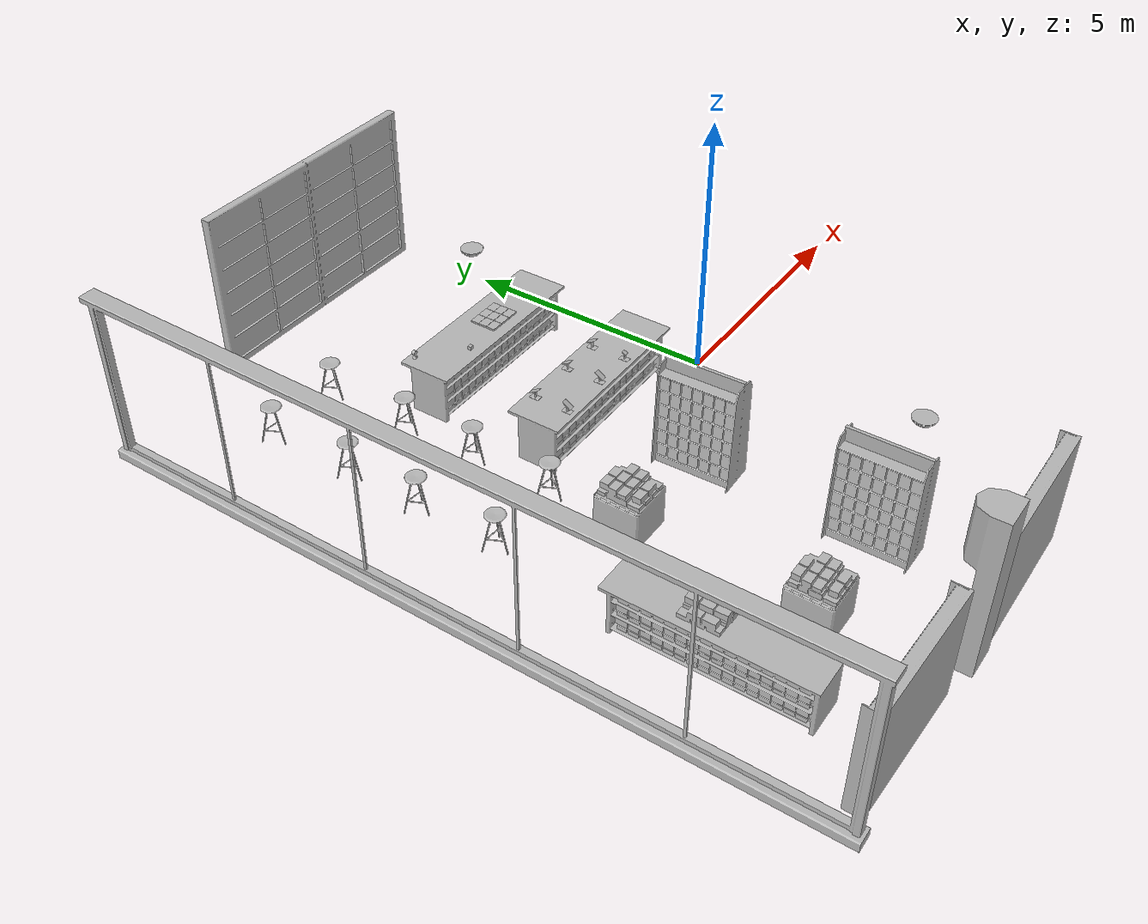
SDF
<sdf version="1.6">
 <world name="default">
  <model name="BookE_01_006">
   <link name="aws_robomaker_retail_BookE_01::link">
    <inertial>
     <mass>1</mass>
     <inertia><ixy>0</ixy><ixz>0</ixz><iyz>0</iyz><ixx>0.0666</ixx><iyy>0.0346</iyy><izz>0.0986</izz></inertia>
    </inertial>
    <collision name="collision">
     <geometry>
      <mesh>
       <uri>file://models/aws_robomaker_retail_BookE_01/meshes/aws_BookE_01_collision.DAE</uri>
       <scale>1 1 1</scale>
      </mesh>
     </geometry>
    </collision>
    <visual name="visual">
     <geometry>
      <mesh><uri>file://models/aws_robomaker_retail_BookE_01/meshes/aws_BookE_01_visual.DAE</uri></mesh>
     </geometry>
     <meta><layer>1</layer></meta>
    </visual>
   </link>
   <static>1</static>
   <pose>-1.88942 3.34639 1.05494 0 -0 1.56816</pose>
  </model>
  <model name="BookE_01_007">
   <link name="aws_robomaker_retail_BookE_01::link">
    <inertial>
     <mass>1</mass>
     <inertia><ixy>0</ixy><ixz>0</ixz><iyz>0</iyz><ixx>0.0666</ixx><iyy>0.0346</iyy><izz>0.0986</izz></inertia>
    </inertial>
    <collision name="collision">
     <geometry>
      <mesh>
       <uri>file://models/aws_robomaker_retail_BookE_01/meshes/aws_BookE_01_collision.DAE</uri>
       <scale>1 1 1</scale>
      </mesh>
     </geometry>
    </collision>
    <visual name="visual">
     <geometry>
      <mesh><uri>file://models/aws_robomaker_retail_BookE_01/meshes/aws_BookE_01_visual.DAE</uri></mesh>
     </geometry>
     <meta><layer>1</layer></meta>
    </visual>
   </link>
   <static>1</static>
   <pose>-2.12373 3.34639 1.05494 0 -0 1.56816</pose>
  </model>
  <model name="BookE_01_014">
   <link name="aws_robomaker_retail_BookE_01::link">
    <inertial>
     <mass>1</mass>
     <inertia><ixy>0</ixy><ixz>0</ixz><iyz>0</iyz><ixx>0.0666</ixx><iyy>0.0346</iyy><izz>0.0986</izz></inertia>
    </inertial>
    <collision name="collision">
     <geometry>
      <mesh>
       <uri>file://models/aws_robomaker_retail_BookE_01/meshes/aws_BookE_01_collision.DAE</uri>
       <scale>1 1 1</scale>
      </mesh>
     </geometry>
    </collision>
    <visual name="visual">
     <geometry>
      <mesh><uri>file://models/aws_robomaker_retail_BookE_01/meshes/aws_BookE_01_visual.DAE</uri></mesh>
     </geometry>
     <meta><layer>1</layer></meta>
    </visual>
   </link>
   <static>1</static>
   <pose>-1.88942 2.99369 1.05494 0 -0 1.56816</pose>
  </model>
  <model name="BookE_01_015">
   <link name="aws_robomaker_retail_BookE_01::link">
    <inertial>
     <mass>1</mass>
     <inertia><ixy>0</ixy><ixz>0</ixz><iyz>0</iyz><ixx>0.0666</ixx><iyy>0.0346</iyy><izz>0.0986</izz></inertia>
    </inertial>
    <collision name="collision">
     <geometry>
      <mesh>
       <uri>file://models/aws_robomaker_retail_BookE_01/meshes/aws_BookE_01_collision.DAE</uri>
       <scale>1 1 1</scale>
      </mesh>
     </geometry>
    </collision>
    <visual name="visual">
     <geometry>
      <mesh><uri>file://models/aws_robomaker_retail_BookE_01/meshes/aws_BookE_01_visual.DAE</uri></mesh>
     </geometry>
     <meta><layer>1</layer></meta>
    </visual>
   </link>
   <static>1</static>
   <pose>-2.12373 2.99369 1.05494 0 -0 1.56816</pose>
  </model>
  <model name="BookE_01_016">
   <link name="aws_robomaker_retail_BookE_01::link">
    <inertial>
     <mass>1</mass>
     <inertia><ixy>0</ixy><ixz>0</ixz><iyz>0</iyz><ixx>0.0666</ixx><iyy>0.0346</iyy><izz>0.0986</izz></inertia>
    </inertial>
    <collision name="collision">
     <geometry>
      <mesh>
       <uri>file://models/aws_robomaker_retail_BookE_01/meshes/aws_BookE_01_collision.DAE</uri>
       <scale>1 1 1</scale>
      </mesh>
     </geometry>
    </collision>
    <visual name="visual">
     <geometry>
      <mesh><uri>file://models/aws_robomaker_retail_BookE_01/meshes/aws_BookE_01_visual.DAE</uri></mesh>
     </geometry>
     <meta><layer>1</layer></meta>
    </visual>
   </link>
   <static>1</static>
   <pose>-2.35737 2.99369 1.05494 0 -0 1.56816</pose>
  </model>
  <model name="BookE_01_017">
   <link name="aws_robomaker_retail_BookE_01::link">
    <inertial>
     <mass>1</mass>
     <inertia><ixy>0</ixy><ixz>0</ixz><iyz>0</iyz><ixx>0.0666</ixx><iyy>0.0346</iyy><izz>0.0986</izz></inertia>
    </inertial>
    <collision name="collision">
     <geometry>
      <mesh>
       <uri>file://models/aws_robomaker_retail_BookE_01/meshes/aws_BookE_01_collision.DAE</uri>
       <scale>1 1 1</scale>
      </mesh>
     </geometry>
    </collision>
    <visual name="visual">
     <geometry>
      <mesh><uri>file://models/aws_robomaker_retail_BookE_01/meshes/aws_BookE_01_visual.DAE</uri></mesh>
     </geometry>
     <meta><layer>1</layer></meta>
    </visual>
   </link>
   <static>1</static>
   <pose>-1.88942 3.17292 1.05494 0 -0 1.56816</pose>
  </model>
  <model name="BookE_01_018">
   <link name="aws_robomaker_retail_BookE_01::link">
    <inertial>
     <mass>1</mass>
     <inertia><ixy>0</ixy><ixz>0</ixz><iyz>0</iyz><ixx>0.0666</ixx><iyy>0.0346</iyy><izz>0.0986</izz></inertia>
    </inertial>
    <collision name="collision">
     <geometry>
      <mesh>
       <uri>file://models/aws_robomaker_retail_BookE_01/meshes/aws_BookE_01_collision.DAE</uri>
       <scale>1 1 1</scale>
      </mesh>
     </geometry>
    </collision>
    <visual name="visual">
     <geometry>
      <mesh><uri>file://models/aws_robomaker_retail_BookE_01/meshes/aws_BookE_01_visual.DAE</uri></mesh>
     </geometry>
     <meta><layer>1</layer></meta>
    </visual>
   </link>
   <static>1</static>
   <pose>-2.12373 3.17292 1.05494 0 -0 1.56816</pose>
  </model>
  <model name="BookE_01_019">
   <link name="aws_robomaker_retail_BookE_01::link">
    <inertial>
     <mass>1</mass>
     <inertia><ixy>0</ixy><ixz>0</ixz><iyz>0</iyz><ixx>0.0666</ixx><iyy>0.0346</iyy><izz>0.0986</izz></inertia>
    </inertial>
    <collision name="collision">
     <geometry>
      <mesh>
       <uri>file://models/aws_robomaker_retail_BookE_01/meshes/aws_BookE_01_collision.DAE</uri>
       <scale>1 1 1</scale>
      </mesh>
     </geometry>
    </collision>
    <visual name="visual">
     <geometry>
      <mesh><uri>file://models/aws_robomaker_retail_BookE_01/meshes/aws_BookE_01_visual.DAE</uri></mesh>
     </geometry>
     <meta><layer>1</layer></meta>
    </visual>
   </link>
   <static>1</static>
   <pose>-2.35737 3.17292 1.05494 0 -0 1.56816</pose>
  </model>
  <model name="BookE_01_030">
   <link name="aws_robomaker_retail_BookE_01::link">
    <inertial>
     <mass>1</mass>
     <inertia><ixy>0</ixy><ixz>0</ixz><iyz>0</iyz><ixx>0.0666</ixx><iyy>0.0346</iyy><izz>0.0986</izz></inertia>
    </inertial>
    <collision name="collision">
     <geometry>
      <mesh>
       <uri>file://models/aws_robomaker_retail_BookE_01/meshes/aws_BookE_01_collision.DAE</uri>
       <scale>1 1 1</scale>
      </mesh>
     </geometry>
    </collision>
    <visual name="visual">
     <geometry>
      <mesh><uri>file://models/aws_robomaker_retail_BookE_01/meshes/aws_BookE_01_visual.DAE</uri></mesh>
     </geometry>
     <meta><layer>1</layer></meta>
    </visual>
   </link>
   <static>1</static>
   <pose>-2.35737 3.34639 1.05494 0 -0 1.56816</pose>
  </model>
  <model name="BookD_01_002">
   <link name="aws_robomaker_retail_BookD_01::link">
    <inertial><mass>0.5</mass></inertial>
    <collision name="collision">
     <geometry>
      <mesh>
       <uri>file://models/aws_robomaker_retail_BookD_01/meshes/aws_BookD_01_collision.DAE</uri>
       <scale>1 1 1</scale>
      </mesh>
     </geometry>
    </collision>
    <visual name="visual">
     <geometry>
      <mesh><uri>file://models/aws_robomaker_retail_BookD_01/meshes/aws_BookD_01_visual.DAE</uri></mesh>
     </geometry>
     <meta><layer>1</layer></meta>
    </visual>
   </link>
   <static>1</static>
   <pose>-4.50961 -1.31254 0.804482 0 0 -4e-06</pose>
  </model>
  <model name="BookF_01_003">
   <link name="aws_robomaker_retail_BookF_01::link">
    <inertial>
     <mass>10</mass>
     <inertia>
      <ixx>0.583817</ixx>
      <ixy>0</ixy>
      <ixz>0</ixz>
      <iyy>0.502925</iyy>
      <iyz>0</iyz>
      <izz>0.99304</izz>
     </inertia>
    </inertial>
    <collision name="collision">
     <geometry>
      <mesh>
       <uri>file://models/aws_robomaker_retail_BookF_01/meshes/aws_BookF_01_collision.DAE</uri>
       <scale>1 1 1</scale>
      </mesh>
     </geometry>
    </collision>
    <visual name="visual">
     <geometry>
      <mesh><uri>file://models/aws_robomaker_retail_BookF_01/meshes/aws_BookF_01_visual.DAE</uri></mesh>
     </geometry>
     <meta><layer>1</layer></meta>
    </visual>
   </link>
   <static>1</static>
   <pose>-4.60493 -4.77214 0.804483 4e-06 -0 0</pose>
  </model>
  <model name="BookD_01_003">
   <link name="aws_robomaker_retail_BookD_01::link">
    <inertial><mass>0.5</mass></inertial>
    <collision name="collision">
     <geometry>
      <mesh>
       <uri>file://models/aws_robomaker_retail_BookD_01/meshes/aws_BookD_01_collision.DAE</uri>
       <scale>1 1 1</scale>
      </mesh>
     </geometry>
    </collision>
    <visual name="visual">
     <geometry>
      <mesh><uri>file://models/aws_robomaker_retail_BookD_01/meshes/aws_BookD_01_visual.DAE</uri></mesh>
     </geometry>
     <meta><layer>1</layer></meta>
    </visual>
   </link>
   <static>1</static>
   <pose>-6.23561 -3.78518 1.03816 8e-06 -0 1.58038</pose>
  </model>
  <model name="BookshelfA_01_003">
   <link name="aws_robomaker_retail_BookshelfA_01::link">
    <inertial>
     <mass>50</mass>
     <inertia><ixx>27.7341</ixx><ixy>0</ixy><ixz>0</ixz><iyy>20.9361</iyy><iyz>0</iyz><izz>11.3596</izz></inertia>
    </inertial>
    <collision name="collision">
     <geometry>
      <mesh>
       <uri>file://models/aws_robomaker_retail_BookshelfA_01/meshes/aws_BookshelfA_01_collision.DAE</uri>
       <scale>1 1 1</scale>
      </mesh>
     </geometry>
    </collision>
    <visual name="visual">
     <geometry>
      <mesh><uri>file://models/aws_robomaker_retail_BookshelfA_01/meshes/aws_BookshelfA_01_visual.DAE</uri></mesh>
     </geometry>
     <meta><layer>1</layer></meta>
    </visual>
   </link>
   <static>1</static>
   <pose>-2.55449 -1.48746 0.006337 0.001313 -0.001987 0.031824</pose>
  </model>
  <model name="BookshelfA_01_004">
   <link name="aws_robomaker_retail_BookshelfA_01::link">
    <inertial>
     <mass>50</mass>
     <inertia><ixx>27.7341</ixx><ixy>0</ixy><ixz>0</ixz><iyy>20.9361</iyy><iyz>0</iyz><izz>11.3596</izz></inertia>
    </inertial>
    <collision name="collision">
     <geometry>
      <mesh>
       <uri>file://models/aws_robomaker_retail_BookshelfA_01/meshes/aws_BookshelfA_01_collision.DAE</uri>
       <scale>1 1 1</scale>
      </mesh>
     </geometry>
    </collision>
    <visual name="visual">
     <geometry>
      <mesh><uri>file://models/aws_robomaker_retail_BookshelfA_01/meshes/aws_BookshelfA_01_visual.DAE</uri></mesh>
     </geometry>
     <meta><layer>1</layer></meta>
    </visual>
   </link>
   <static>1</static>
   <pose>-2.60858 -4.76165 0.003411 0 -0 0</pose>
  </model>
  <model name="BookshelfB_01_001">
   <link name="aws_robomaker_retail_BookshelfB_01::link">
    <inertial>
     <mass>50</mass>
     <inertia><ixx>19.8742</ixx><ixy>0</ixy><ixz>0</ixz><iyy>49.1263</iyy><iyz>0</iyz><izz>30.2231</izz></inertia>
    </inertial>
    <collision name="collision">
     <geometry>
      <mesh>
       <uri>file://models/aws_robomaker_retail_BookshelfB_01/meshes/aws_BookshelfB_01_collision.DAE</uri>
       <scale>1 1 1</scale>
      </mesh>
     </geometry>
    </collision>
    <visual name="visual">
     <geometry>
      <mesh><uri>file://models/aws_robomaker_retail_BookshelfB_01/meshes/aws_BookshelfB_01_visual.DAE</uri></mesh>
     </geometry>
     <meta><layer>1</layer></meta>
    </visual>
   </link>
   <static>1</static>
   <pose>-6.18968 -6.78565 -0.008942 0.003533 0.000121 -0.032073</pose>
  </model>
  <model name="BookshelfB_01_002">
   <link name="aws_robomaker_retail_BookshelfB_01::link">
    <inertial>
     <mass>50</mass>
     <inertia><ixx>19.8742</ixx><ixy>0</ixy><ixz>0</ixz><iyy>49.1263</iyy><iyz>0</iyz><izz>30.2231</izz></inertia>
    </inertial>
    <collision name="collision">
     <geometry>
      <mesh>
       <uri>file://models/aws_robomaker_retail_BookshelfB_01/meshes/aws_BookshelfB_01_collision.DAE</uri>
       <scale>1 1 1</scale>
      </mesh>
     </geometry>
    </collision>
    <visual name="visual">
     <geometry>
      <mesh><uri>file://models/aws_robomaker_retail_BookshelfB_01/meshes/aws_BookshelfB_01_visual.DAE</uri></mesh>
     </geometry>
     <meta><layer>1</layer></meta>
    </visual>
   </link>
   <static>1</static>
   <pose>-2.20941 -6.97146 0.017074 -0.000128 -0.000252 0.000364</pose>
  </model>
  <model name="BookshelfC_01_003">
   <link name="aws_robomaker_retail_BookshelfC_01::link">
    <inertial>
     <mass>50</mass>
     <inertia><ixx>5.5865</ixx><ixy>0</ixy><ixz>0</ixz><iyy>5.47324</iyy><iyz>0</iyz><izz>6.23277</izz></inertia>
    </inertial>
    <collision name="collision">
     <geometry>
      <mesh>
       <uri>file://models/aws_robomaker_retail_BookshelfC_01/meshes/aws_BookshelfC_01_collision.DAE</uri>
       <scale>1 1 1</scale>
      </mesh>
     </geometry>
    </collision>
    <visual name="visual">
     <geometry>
      <mesh><uri>file://models/aws_robomaker_retail_BookshelfC_01/meshes/aws_BookshelfC_01_visual.DAE</uri></mesh>
     </geometry>
     <meta><layer>1</layer></meta>
    </visual>
   </link>
   <static>1</static>
   <pose>-4.51711 -1.31023 0.045908 0 -0 0</pose>
  </model>
  <model name="BookshelfC_01_004">
   <link name="aws_robomaker_retail_BookshelfC_01::link">
    <inertial>
     <mass>50</mass>
     <inertia><ixx>5.5865</ixx><ixy>0</ixy><ixz>0</ixz><iyy>5.47324</iyy><iyz>0</iyz><izz>6.23277</izz></inertia>
    </inertial>
    <collision name="collision">
     <geometry>
      <mesh>
       <uri>file://models/aws_robomaker_retail_BookshelfC_01/meshes/aws_BookshelfC_01_collision.DAE</uri>
       <scale>1 1 1</scale>
      </mesh>
     </geometry>
    </collision>
    <visual name="visual">
     <geometry>
      <mesh><uri>file://models/aws_robomaker_retail_BookshelfC_01/meshes/aws_BookshelfC_01_visual.DAE</uri></mesh>
     </geometry>
     <meta><layer>1</layer></meta>
    </visual>
   </link>
   <static>1</static>
   <pose>-4.61436 -4.76165 0.045908 0 -0 0</pose>
  </model>
  <model name="ChairB_01_009">
   <link name="aws_robomaker_retail_ChairB_01::link">
    <inertial>
     <mass>3</mass>
     <inertia>
      <ixx>0.188185</ixx>
      <ixy>0</ixy>
      <ixz>0</ixz>
      <iyy>0.190617</iyy>
      <iyz>0</iyz>
      <izz>0.100999</izz>
     </inertia>
    </inertial>
    <collision name="collision">
     <geometry>
      <mesh>
       <uri>file://models/aws_robomaker_retail_ChairB_01/meshes/aws_ChairB_01_collision.DAE</uri>
       <scale>1 1 1</scale>
      </mesh>
     </geometry>
    </collision>
    <visual name="visual">
     <geometry>
      <mesh><uri>file://models/aws_robomaker_retail_ChairB_01/meshes/aws_ChairB_01_visual.DAE</uri></mesh>
     </geometry>
     <meta><layer>1</layer></meta>
    </visual>
   </link>
   <static>1</static>
   <pose>-4.60295 5.02192 0.030259 -0.001073 -0.001935 0.001439</pose>
  </model>
  <model name="ChairB_01_010">
   <link name="aws_robomaker_retail_ChairB_01::link">
    <inertial>
     <mass>3</mass>
     <inertia>
      <ixx>0.188185</ixx>
      <ixy>0</ixy>
      <ixz>0</ixz>
      <iyy>0.190617</iyy>
      <iyz>0</iyz>
      <izz>0.100999</izz>
     </inertia>
    </inertial>
    <collision name="collision">
     <geometry>
      <mesh>
       <uri>file://models/aws_robomaker_retail_ChairB_01/meshes/aws_ChairB_01_collision.DAE</uri>
       <scale>1 1 1</scale>
      </mesh>
     </geometry>
    </collision>
    <visual name="visual">
     <geometry>
      <mesh><uri>file://models/aws_robomaker_retail_ChairB_01/meshes/aws_ChairB_01_visual.DAE</uri></mesh>
     </geometry>
     <meta><layer>1</layer></meta>
    </visual>
   </link>
   <static>1</static>
   <pose>-6.10969 5.02625 0.027274 -0.001422 -0.002424 0.000176</pose>
  </model>
  <model name="ChairB_01_011">
   <link name="aws_robomaker_retail_ChairB_01::link">
    <inertial>
     <mass>3</mass>
     <inertia>
      <ixx>0.188185</ixx>
      <ixy>0</ixy>
      <ixz>0</ixz>
      <iyy>0.190617</iyy>
      <iyz>0</iyz>
      <izz>0.100999</izz>
     </inertia>
    </inertial>
    <collision name="collision">
     <geometry>
      <mesh>
       <uri>file://models/aws_robomaker_retail_ChairB_01/meshes/aws_ChairB_01_collision.DAE</uri>
       <scale>1 1 1</scale>
      </mesh>
     </geometry>
    </collision>
    <visual name="visual">
     <geometry>
      <mesh><uri>file://models/aws_robomaker_retail_ChairB_01/meshes/aws_ChairB_01_visual.DAE</uri></mesh>
     </geometry>
     <meta><layer>1</layer></meta>
    </visual>
   </link>
   <static>1</static>
   <pose>-4.61617 3.27675 0.0321 -0.001068 -0.001938 0.000117</pose>
  </model>
  <model name="ChairB_01_012">
   <link name="aws_robomaker_retail_ChairB_01::link">
    <inertial>
     <mass>3</mass>
     <inertia>
      <ixx>0.188185</ixx>
      <ixy>0</ixy>
      <ixz>0</ixz>
      <iyy>0.190617</iyy>
      <iyz>0</iyz>
      <izz>0.100999</izz>
     </inertia>
    </inertial>
    <collision name="collision">
     <geometry>
      <mesh>
       <uri>file://models/aws_robomaker_retail_ChairB_01/meshes/aws_ChairB_01_collision.DAE</uri>
       <scale>1 1 1</scale>
      </mesh>
     </geometry>
    </collision>
    <visual name="visual">
     <geometry>
      <mesh><uri>file://models/aws_robomaker_retail_ChairB_01/meshes/aws_ChairB_01_visual.DAE</uri></mesh>
     </geometry>
     <meta><layer>1</layer></meta>
    </visual>
   </link>
   <static>1</static>
   <pose>-6.09076 3.29341 0.029216 -0.001072 -0.001936 0.000119</pose>
  </model>
  <model name="ChairB_01_013">
   <link name="aws_robomaker_retail_ChairB_01::link">
    <inertial>
     <mass>3</mass>
     <inertia>
      <ixx>0.188185</ixx>
      <ixy>0</ixy>
      <ixz>0</ixz>
      <iyy>0.190617</iyy>
      <iyz>0</iyz>
      <izz>0.100999</izz>
     </inertia>
    </inertial>
    <collision name="collision">
     <geometry>
      <mesh>
       <uri>file://models/aws_robomaker_retail_ChairB_01/meshes/aws_ChairB_01_collision.DAE</uri>
       <scale>1 1 1</scale>
      </mesh>
     </geometry>
    </collision>
    <visual name="visual">
     <geometry>
      <mesh><uri>file://models/aws_robomaker_retail_ChairB_01/meshes/aws_ChairB_01_visual.DAE</uri></mesh>
     </geometry>
     <meta><layer>1</layer></meta>
    </visual>
   </link>
   <static>1</static>
   <pose>-4.5896 1.81577 0.032459 0.001362 -0.001944 0.000145</pose>
  </model>
  <model name="ChairB_01_014">
   <link name="aws_robomaker_retail_ChairB_01::link">
    <inertial>
     <mass>3</mass>
     <inertia>
      <ixx>0.188185</ixx>
      <ixy>0</ixy>
      <ixz>0</ixz>
      <iyy>0.190617</iyy>
      <iyz>0</iyz>
      <izz>0.100999</izz>
     </inertia>
    </inertial>
    <collision name="collision">
     <geometry>
      <mesh>
       <uri>file://models/aws_robomaker_retail_ChairB_01/meshes/aws_ChairB_01_collision.DAE</uri>
       <scale>1 1 1</scale>
      </mesh>
     </geometry>
    </collision>
    <visual name="visual">
     <geometry>
      <mesh><uri>file://models/aws_robomaker_retail_ChairB_01/meshes/aws_ChairB_01_visual.DAE</uri></mesh>
     </geometry>
     <meta><layer>1</layer></meta>
    </visual>
   </link>
   <static>1</static>
   <pose>-6.1301 1.7986 0.02944 0.001362 -0.001946 0.000105</pose>
  </model>
  <model name="ChairB_01_015">
   <link name="aws_robomaker_retail_ChairB_01::link">
    <inertial>
     <mass>3</mass>
     <inertia>
      <ixx>0.188185</ixx>
      <ixy>0</ixy>
      <ixz>0</ixz>
      <iyy>0.190617</iyy>
      <iyz>0</iyz>
      <izz>0.100999</izz>
     </inertia>
    </inertial>
    <collision name="collision">
     <geometry>
      <mesh>
       <uri>file://models/aws_robomaker_retail_ChairB_01/meshes/aws_ChairB_01_collision.DAE</uri>
       <scale>1 1 1</scale>
      </mesh>
     </geometry>
    </collision>
    <visual name="visual">
     <geometry>
      <mesh><uri>file://models/aws_robomaker_retail_ChairB_01/meshes/aws_ChairB_01_visual.DAE</uri></mesh>
     </geometry>
     <meta><layer>1</layer></meta>
    </visual>
   </link>
   <static>1</static>
   <pose>-4.6075 0.203637 0.030218 0.001362 -0.001944 0.000163</pose>
  </model>
  <model name="ChairB_01_016">
   <link name="aws_robomaker_retail_ChairB_01::link">
    <inertial>
     <mass>3</mass>
     <inertia>
      <ixx>0.188185</ixx>
      <ixy>0</ixy>
      <ixz>0</ixz>
      <iyy>0.190617</iyy>
      <iyz>0</iyz>
      <izz>0.100999</izz>
     </inertia>
    </inertial>
    <collision name="collision">
     <geometry>
      <mesh>
       <uri>file://models/aws_robomaker_retail_ChairB_01/meshes/aws_ChairB_01_collision.DAE</uri>
       <scale>1 1 1</scale>
      </mesh>
     </geometry>
    </collision>
    <visual name="visual">
     <geometry>
      <mesh><uri>file://models/aws_robomaker_retail_ChairB_01/meshes/aws_ChairB_01_visual.DAE</uri></mesh>
     </geometry>
     <meta><layer>1</layer></meta>
    </visual>
   </link>
   <static>1</static>
   <pose>-6.12149 0.195027 0.027272 0.001357 -0.00195 0.003291</pose>
  </model>
  <model name="ColumnB_01_002">
   <link name="aws_robomaker_retail_ColumnB_01::link">
    <inertial>
     <mass>50</mass>
     <inertia><ixx>44.5597</ixx><ixy>0</ixy><ixz>0</ixz><iyy>44.5597</iyy><iyz>0</iyz><izz>1.87942</izz></inertia>
    </inertial>
    <collision name="collision">
     <geometry>
      <mesh>
       <uri>file://models/aws_robomaker_retail_ColumnB_01/meshes/aws_ColumnB_01_collision.DAE</uri>
       <scale>1 1 1</scale>
      </mesh>
     </geometry>
    </collision>
    <visual name="visual">
     <geometry>
      <mesh><uri>file://models/aws_robomaker_retail_ColumnB_01/meshes/aws_ColumnB_01_visual.DAE</uri></mesh>
     </geometry>
     <meta><layer>1</layer></meta>
    </visual>
   </link>
   <static>1</static>
   <pose>-4.07623 -6.86071 0.017511 0.001895 -0.000628 -0.003755</pose>
  </model>
  <model name="SecurityCamera_01_002">
   <link name="aws_robomaker_retail_SecurityCamera_01::link">
    <inertial>
     <mass>1</mass>
     <inertia>
      <ixx>18.2222</ixx>
      <ixy>0</ixy>
      <ixz>0</ixz>
      <iyy>18.2222</iyy>
      <iyz>0</iyz>
      <izz>0.0018767</izz>
     </inertia>
    </inertial>
    <collision name="collision">
     <geometry>
      <mesh>
       <uri>file://models/aws_robomaker_retail_SecurityCamera_01/meshes/aws_SecurityCamera_01_collision.DAE</uri>
       <scale>1 1 1</scale>
      </mesh>
     </geometry>
    </collision>
    <visual name="visual">
     <geometry>
      <mesh>
       <uri>file://models/aws_robomaker_retail_SecurityCamera_01/meshes/aws_SecurityCamera_01_visual.DAE</uri>
      </mesh>
     </geometry>
     <meta><layer>2</layer></meta>
    </visual>
   </link>
   <pose>-3.9045 3.59051 1.03673 -0.000122 5e-06 3.05114</pose>
  </model>
  <model name="DeskA_01_001">
   <link name="aws_robomaker_retail_DeskA_01::link">
    <inertial>
     <mass>20</mass>
     <inertia><ixx>3.49717</ixx><ixy>0</ixy><ixz>0</ixz><iyy>23.5599</iyy><iyz>0</iyz><izz>23.5702</izz></inertia>
    </inertial>
    <collision name="collision">
     <geometry>
      <mesh>
       <uri>file://models/aws_robomaker_retail_DeskA_01/meshes/aws_DeskA_01_collision.DAE</uri>
       <scale>1 1 1</scale>
      </mesh>
     </geometry>
    </collision>
    <visual name="visual">
     <geometry>
      <mesh><uri>file://models/aws_robomaker_retail_DeskA_01/meshes/aws_DeskA_01_visual.DAE</uri></mesh>
     </geometry>
     <meta><layer>1</layer></meta>
    </visual>
   </link>
   <static>1</static>
   <pose>-2.34069 3.20012 0.014921 0.000124 -1e-05 0.000376</pose>
  </model>
  <model name="DeskA_01_002">
   <link name="aws_robomaker_retail_DeskA_01::link">
    <inertial>
     <mass>20</mass>
     <inertia><ixx>3.49717</ixx><ixy>0</ixy><ixz>0</ixz><iyy>23.5599</iyy><iyz>0</iyz><izz>23.5702</izz></inertia>
    </inertial>
    <collision name="collision">
     <geometry>
      <mesh>
       <uri>file://models/aws_robomaker_retail_DeskA_01/meshes/aws_DeskA_01_collision.DAE</uri>
       <scale>1 1 1</scale>
      </mesh>
     </geometry>
    </collision>
    <visual name="visual">
     <geometry>
      <mesh><uri>file://models/aws_robomaker_retail_DeskA_01/meshes/aws_DeskA_01_visual.DAE</uri></mesh>
     </geometry>
     <meta><layer>1</layer></meta>
    </visual>
   </link>
   <static>1</static>
   <pose>-2.36994 0.836099 0.00876 -0.000772 -0.001938 1.7e-05</pose>
  </model>
  <model name="DeskA_01_003">
   <link name="aws_robomaker_retail_DeskA_01::link">
    <inertial>
     <mass>20</mass>
     <inertia><ixx>3.49717</ixx><ixy>0</ixy><ixz>0</ixz><iyy>23.5599</iyy><iyz>0</iyz><izz>23.5702</izz></inertia>
    </inertial>
    <collision name="collision">
     <geometry>
      <mesh>
       <uri>file://models/aws_robomaker_retail_DeskA_01/meshes/aws_DeskA_01_collision.DAE</uri>
       <scale>1 1 1</scale>
      </mesh>
     </geometry>
    </collision>
    <visual name="visual">
     <geometry>
      <mesh><uri>file://models/aws_robomaker_retail_DeskA_01/meshes/aws_DeskA_01_visual.DAE</uri></mesh>
     </geometry>
     <meta><layer>1</layer></meta>
    </visual>
   </link>
   <static>1</static>
   <pose>-6.25465 -3.9792 -0.004603 0.001948 0.001361 -1.56957</pose>
  </model>
  <model name="DoorB_01_001">
   <link name="aws_robomaker_retail_DoorB_01::link">
    <inertial>
     <mass>50</mass>
     <inertia><ixx>44.5597</ixx><ixy>0</ixy><ixz>0</ixz><iyy>151.699</iyy><iyz>0</iyz><izz>107.806</izz></inertia>
    </inertial>
    <collision name="collision">
     <geometry>
      <mesh>
       <uri>file://models/aws_robomaker_retail_DoorB_01/meshes/aws_DoorB_01_collision.DAE</uri>
       <scale>1 1 1</scale>
      </mesh>
     </geometry>
    </collision>
    <visual name="visual">
     <geometry>
      <mesh><uri>file://models/aws_robomaker_retail_DoorB_01/meshes/aws_DoorB_01_visual.DAE</uri></mesh>
     </geometry>
     <meta><layer>2</layer></meta>
    </visual>
   </link>
   <static>1</static>
   <pose>-2.49246 7.21937 -0.035203 0 -0 0</pose>
  </model>
  <model name="TabletB_01_011">
   <link name="aws_robomaker_retail_TabletB_01::link">
    <inertial>
     <mass>0.161</mass>
     <inertia>
      <ixx>0.346954</ixx>
      <ixy>0</ixy>
      <ixz>0</ixz>
      <iyy>0.177288</iyy>
      <iyz>0</iyz>
      <izz>0.521826</izz>
     </inertia>
    </inertial>
    <collision name="collision">
     <geometry>
      <mesh>
       <uri>file://models/aws_robomaker_retail_TabletB_01/meshes/aws_TabletB_01_collision.DAE</uri>
       <scale>1 1 1</scale>
      </mesh>
     </geometry>
    </collision>
    <visual name="visual">
     <geometry>
      <mesh><uri>file://models/aws_robomaker_retail_TabletB_01/meshes/aws_TabletB_01_visual.DAE</uri></mesh>
     </geometry>
     <meta><layer>1</layer></meta>
    </visual>
   </link>
   <static>1</static>
   <pose>-5.91505 -3.03174 1.18472 0.518384 0.023341 1.56451</pose>
  </model>
  <model name="TabletB_01_012">
   <link name="aws_robomaker_retail_TabletB_01::link">
    <inertial>
     <mass>0.161</mass>
     <inertia>
      <ixx>0.346954</ixx>
      <ixy>0</ixy>
      <ixz>0</ixz>
      <iyy>0.177288</iyy>
      <iyz>0</iyz>
      <izz>0.521826</izz>
     </inertia>
    </inertial>
    <collision name="collision">
     <geometry>
      <mesh>
       <uri>file://models/aws_robomaker_retail_TabletB_01/meshes/aws_TabletB_01_collision.DAE</uri>
       <scale>1 1 1</scale>
      </mesh>
     </geometry>
    </collision>
    <visual name="visual">
     <geometry>
      <mesh><uri>file://models/aws_robomaker_retail_TabletB_01/meshes/aws_TabletB_01_visual.DAE</uri></mesh>
     </geometry>
     <meta><layer>1</layer></meta>
    </visual>
   </link>
   <static>1</static>
   <pose>-5.91505 -4.6124 1.18472 0.518384 0.023341 1.56451</pose>
  </model>
  <model name="Tablet_01_002">
   <link name="aws_robomaker_retail_Tablet_01::link">
    <inertial>
     <mass>0.5</mass>
     <inertia><ixx>0.035652</ixx><ixy>0</ixy><ixz>0</ixz><iyy>0.01</iyy><iyz>0</iyz><izz>0.041207</izz></inertia>
    </inertial>
    <collision name="collision">
     <geometry>
      <mesh>
       <uri>file://models/aws_robomaker_retail_Tablet_01/meshes/aws_Tablet_01_collision.DAE</uri>
       <scale>1 1 1</scale>
      </mesh>
     </geometry>
    </collision>
    <visual name="visual">
     <geometry>
      <mesh><uri>file://models/aws_robomaker_retail_Tablet_01/meshes/aws_Tablet_01_visual.DAE</uri></mesh>
     </geometry>
     <meta><layer>2</layer></meta>
    </visual>
   </link>
   <static>1</static>
   <pose>-2.65015 0.489109 1.18055 0.579329 0.041534 -0.007936</pose>
  </model>
  <model name="Tablet_01_004">
   <link name="aws_robomaker_retail_Tablet_01::link">
    <inertial>
     <mass>0.5</mass>
     <inertia><ixx>0.035652</ixx><ixy>0</ixy><ixz>0</ixz><iyy>0.01</iyy><iyz>0</iyz><izz>0.041207</izz></inertia>
    </inertial>
    <collision name="collision">
     <geometry>
      <mesh>
       <uri>file://models/aws_robomaker_retail_Tablet_01/meshes/aws_Tablet_01_collision.DAE</uri>
       <scale>1 1 1</scale>
      </mesh>
     </geometry>
    </collision>
    <visual name="visual">
     <geometry>
      <mesh><uri>file://models/aws_robomaker_retail_Tablet_01/meshes/aws_Tablet_01_visual.DAE</uri></mesh>
     </geometry>
     <meta><layer>2</layer></meta>
    </visual>
   </link>
   <static>1</static>
   <pose>-3.63933 0.489109 1.18055 0.579329 0.041534 -0.007936</pose>
  </model>
  <model name="Tablet_01_006">
   <link name="aws_robomaker_retail_Tablet_01::link">
    <inertial>
     <mass>0.5</mass>
     <inertia><ixx>0.035652</ixx><ixy>0</ixy><ixz>0</ixz><iyy>0.01</iyy><iyz>0</iyz><izz>0.041207</izz></inertia>
    </inertial>
    <collision name="collision">
     <geometry>
      <mesh>
       <uri>file://models/aws_robomaker_retail_Tablet_01/meshes/aws_Tablet_01_collision.DAE</uri>
       <scale>1 1 1</scale>
      </mesh>
     </geometry>
    </collision>
    <visual name="visual">
     <geometry>
      <mesh><uri>file://models/aws_robomaker_retail_Tablet_01/meshes/aws_Tablet_01_visual.DAE</uri></mesh>
     </geometry>
     <meta><layer>2</layer></meta>
    </visual>
   </link>
   <static>1</static>
   <pose>-1.87669 1.16382 1.17789 0.513308 -1e-06 3.11006</pose>
  </model>
  <model name="Tablet_01_007">
   <link name="aws_robomaker_retail_Tablet_01::link">
    <inertial>
     <mass>0.5</mass>
     <inertia><ixx>0.035652</ixx><ixy>0</ixy><ixz>0</ixz><iyy>0.01</iyy><iyz>0</iyz><izz>0.041207</izz></inertia>
    </inertial>
    <collision name="collision">
     <geometry>
      <mesh>
       <uri>file://models/aws_robomaker_retail_Tablet_01/meshes/aws_Tablet_01_collision.DAE</uri>
       <scale>1 1 1</scale>
      </mesh>
     </geometry>
    </collision>
    <visual name="visual">
     <geometry>
      <mesh><uri>file://models/aws_robomaker_retail_Tablet_01/meshes/aws_Tablet_01_visual.DAE</uri></mesh>
     </geometry>
     <meta><layer>2</layer></meta>
    </visual>
   </link>
   <static>1</static>
   <pose>-2.64967 1.16382 1.17789 0.513308 -1e-06 3.11006</pose>
  </model>
  <model name="Tablet_01_008">
   <link name="aws_robomaker_retail_Tablet_01::link">
    <inertial>
     <mass>0.5</mass>
     <inertia><ixx>0.035652</ixx><ixy>0</ixy><ixz>0</ixz><iyy>0.01</iyy><iyz>0</iyz><izz>0.041207</izz></inertia>
    </inertial>
    <collision name="collision">
     <geometry>
      <mesh>
       <uri>file://models/aws_robomaker_retail_Tablet_01/meshes/aws_Tablet_01_collision.DAE</uri>
       <scale>1 1 1</scale>
      </mesh>
     </geometry>
    </collision>
    <visual name="visual">
     <geometry>
      <mesh><uri>file://models/aws_robomaker_retail_Tablet_01/meshes/aws_Tablet_01_visual.DAE</uri></mesh>
     </geometry>
     <meta><layer>2</layer></meta>
    </visual>
   </link>
   <static>1</static>
   <pose>-3.63655 1.16382 1.17789 0.513308 -1e-06 3.11006</pose>
  </model>
  <model name="Holder_01_005">
   <link name="aws_robomaker_retail_Holder_01::link">
    <inertial><mass>1</mass></inertial>
    <collision name="collision">
     <geometry>
      <mesh>
       <uri>file://models/aws_robomaker_retail_Holder_01/meshes/aws_Holder_01_collision.DAE</uri>
       <scale>1 1 1</scale>
      </mesh>
     </geometry>
    </collision>
    <visual name="visual">
     <geometry>
      <mesh><uri>file://models/aws_robomaker_retail_Holder_01/meshes/aws_Holder_01_visual.DAE</uri></mesh>
     </geometry>
     <meta><layer>2</layer></meta>
    </visual>
   </link>
   <static>1</static>
   <pose>-1.84662 0.495602 1.03776 0 -0 0</pose>
  </model>
  <model name="Holder_01_006">
   <link name="aws_robomaker_retail_Holder_01::link">
    <inertial><mass>1</mass></inertial>
    <collision name="collision">
     <geometry>
      <mesh>
       <uri>file://models/aws_robomaker_retail_Holder_01/meshes/aws_Holder_01_collision.DAE</uri>
       <scale>1 1 1</scale>
      </mesh>
     </geometry>
    </collision>
    <visual name="visual">
     <geometry>
      <mesh><uri>file://models/aws_robomaker_retail_Holder_01/meshes/aws_Holder_01_visual.DAE</uri></mesh>
     </geometry>
     <meta><layer>2</layer></meta>
    </visual>
   </link>
   <static>1</static>
   <pose>-2.64781 0.495602 1.03776 0 -0 0</pose>
  </model>
  <model name="Holder_01_008">
   <link name="aws_robomaker_retail_Holder_01::link">
    <inertial><mass>1</mass></inertial>
    <collision name="collision">
     <geometry>
      <mesh>
       <uri>file://models/aws_robomaker_retail_Holder_01/meshes/aws_Holder_01_collision.DAE</uri>
       <scale>1 1 1</scale>
      </mesh>
     </geometry>
    </collision>
    <visual name="visual">
     <geometry>
      <mesh><uri>file://models/aws_robomaker_retail_Holder_01/meshes/aws_Holder_01_visual.DAE</uri></mesh>
     </geometry>
     <meta><layer>2</layer></meta>
    </visual>
   </link>
   <static>1</static>
   <pose>-3.63958 0.495602 1.03776 0 -0 0</pose>
  </model>
  <model name="Holder_01_010">
   <link name="aws_robomaker_retail_Holder_01::link">
    <inertial><mass>1</mass></inertial>
    <collision name="collision">
     <geometry>
      <mesh>
       <uri>file://models/aws_robomaker_retail_Holder_01/meshes/aws_Holder_01_collision.DAE</uri>
       <scale>1 1 1</scale>
      </mesh>
     </geometry>
    </collision>
    <visual name="visual">
     <geometry>
      <mesh><uri>file://models/aws_robomaker_retail_Holder_01/meshes/aws_Holder_01_visual.DAE</uri></mesh>
     </geometry>
     <meta><layer>2</layer></meta>
    </visual>
   </link>
   <static>1</static>
   <pose>-1.87489 1.16083 1.03776 0 0 -3.13015</pose>
  </model>
  <model name="Holder_01_011">
   <link name="aws_robomaker_retail_Holder_01::link">
    <inertial><mass>1</mass></inertial>
    <collision name="collision">
     <geometry>
      <mesh>
       <uri>file://models/aws_robomaker_retail_Holder_01/meshes/aws_Holder_01_collision.DAE</uri>
       <scale>1 1 1</scale>
      </mesh>
     </geometry>
    </collision>
    <visual name="visual">
     <geometry>
      <mesh><uri>file://models/aws_robomaker_retail_Holder_01/meshes/aws_Holder_01_visual.DAE</uri></mesh>
     </geometry>
     <meta><layer>2</layer></meta>
    </visual>
   </link>
   <static>1</static>
   <pose>-2.65916 1.16083 1.03776 0 0 -3.13015</pose>
  </model>
  <model name="Holder_01_012">
   <link name="aws_robomaker_retail_Holder_01::link">
    <inertial><mass>1</mass></inertial>
    <collision name="collision">
     <geometry>
      <mesh>
       <uri>file://models/aws_robomaker_retail_Holder_01/meshes/aws_Holder_01_collision.DAE</uri>
       <scale>1 1 1</scale>
      </mesh>
     </geometry>
    </collision>
    <visual name="visual">
     <geometry>
      <mesh><uri>file://models/aws_robomaker_retail_Holder_01/meshes/aws_Holder_01_visual.DAE</uri></mesh>
     </geometry>
     <meta><layer>2</layer></meta>
    </visual>
   </link>
   <static>1</static>
   <pose>-3.6313 1.16083 1.03776 0 0 -3.13015</pose>
  </model>
  <model name="Holder_01_019">
   <link name="aws_robomaker_retail_Holder_01::link">
    <inertial><mass>1</mass></inertial>
    <collision name="collision">
     <geometry>
      <mesh>
       <uri>file://models/aws_robomaker_retail_Holder_01/meshes/aws_Holder_01_collision.DAE</uri>
       <scale>1 1 1</scale>
      </mesh>
     </geometry>
    </collision>
    <visual name="visual">
     <geometry>
      <mesh><uri>file://models/aws_robomaker_retail_Holder_01/meshes/aws_Holder_01_visual.DAE</uri></mesh>
     </geometry>
     <meta><layer>2</layer></meta>
    </visual>
   </link>
   <static>1</static>
   <pose>-5.92911 -3.03279 1.03776 0 -0 1.55</pose>
  </model>
  <model name="Holder_01_020">
   <link name="aws_robomaker_retail_Holder_01::link">
    <inertial><mass>1</mass></inertial>
    <collision name="collision">
     <geometry>
      <mesh>
       <uri>file://models/aws_robomaker_retail_Holder_01/meshes/aws_Holder_01_collision.DAE</uri>
       <scale>1 1 1</scale>
      </mesh>
     </geometry>
    </collision>
    <visual name="visual">
     <geometry>
      <mesh><uri>file://models/aws_robomaker_retail_Holder_01/meshes/aws_Holder_01_visual.DAE</uri></mesh>
     </geometry>
     <meta><layer>2</layer></meta>
    </visual>
   </link>
   <static>1</static>
   <pose>-5.92911 -4.60364 1.03776 0 -0 1.55</pose>
  </model>
  <model name="LightA_01_004">
   <link name="aws_robomaker_retail_LightA_01::link">
    <inertial><mass>1</mass></inertial>
    <collision name="collision">
     <geometry>
      <mesh>
       <uri>file://models/aws_robomaker_retail_LightA_01/meshes/aws_LightA_01_collision.DAE</uri>
       <scale>1 1 1</scale>
      </mesh>
     </geometry>
    </collision>
    <visual name="visual">
     <geometry>
      <mesh><uri>file://models/aws_robomaker_retail_LightA_01/meshes/aws_LightA_01_visual.DAE</uri></mesh>
     </geometry>
     <meta><layer>3</layer></meta>
    </visual>
   </link>
   <static>1</static>
   <pose>-3.21067 -5.38371 3.15033 0 -0 0</pose>
  </model>
  <model name="LightA_01_005">
   <link name="aws_robomaker_retail_LightA_01::link">
    <inertial><mass>1</mass></inertial>
    <collision name="collision">
     <geometry>
      <mesh>
       <uri>file://models/aws_robomaker_retail_LightA_01/meshes/aws_LightA_01_collision.DAE</uri>
       <scale>1 1 1</scale>
      </mesh>
     </geometry>
    </collision>
    <visual name="visual">
     <geometry>
      <mesh><uri>file://models/aws_robomaker_retail_LightA_01/meshes/aws_LightA_01_visual.DAE</uri></mesh>
     </geometry>
     <meta><layer>3</layer></meta>
    </visual>
   </link>
   <static>1</static>
   <pose>-3.271 2.68593 3.15033 0 -0 0</pose>
  </model>
  <model name="MagicCube_01_003">
   <link name="aws_robomaker_retail_MagicCube_01::link">
    <inertial>
     <mass>0.2</mass>
     <inertia><ixx>0.01</ixx><ixy>0</ixy><ixz>0</ixz><iyy>0.01</iyy><iyz>0</iyz><izz>0.01</izz></inertia>
    </inertial>
    <collision name="collision">
     <geometry>
      <mesh>
       <uri>file://models/aws_robomaker_retail_MagicCube_01/meshes/aws_MagicCube_01_collision.DAE</uri>
       <scale>1 1 1</scale>
      </mesh>
     </geometry>
    </collision>
    <visual name="visual">
     <geometry>
      <mesh><uri>file://models/aws_robomaker_retail_MagicCube_01/meshes/aws_MagicCube_01_visual.DAE</uri></mesh>
     </geometry>
     <meta><layer>1</layer></meta>
    </visual>
   </link>
   <pose>-3.14651 2.92846 1.03615 0.000124 -1e-05 1e-06</pose>
  </model>
  <model name="ShopWindow_01_001">
   <link name="aws_robomaker_retail_ShopWindow_01::link">
    <inertial><mass>1</mass></inertial>
    <collision name="collision">
     <geometry>
      <mesh>
       <uri>file://models/aws_robomaker_retail_ShopWindow_01/meshes/aws_ShopWindow_01_collision.DAE</uri>
       <scale>1 1 1</scale>
      </mesh>
     </geometry>
    </collision>
    <visual name="visual">
     <geometry>
      <mesh><uri>file://models/aws_robomaker_retail_ShopWindow_01/meshes/aws_ShopWindow_01_visual.DAE</uri></mesh>
     </geometry>
    </visual>
   </link>
   <static>1</static>
   <pose>-7.73816 0.01596 -0.180092 0 -0 0</pose>
  </model>
 </world>
</sdf>
